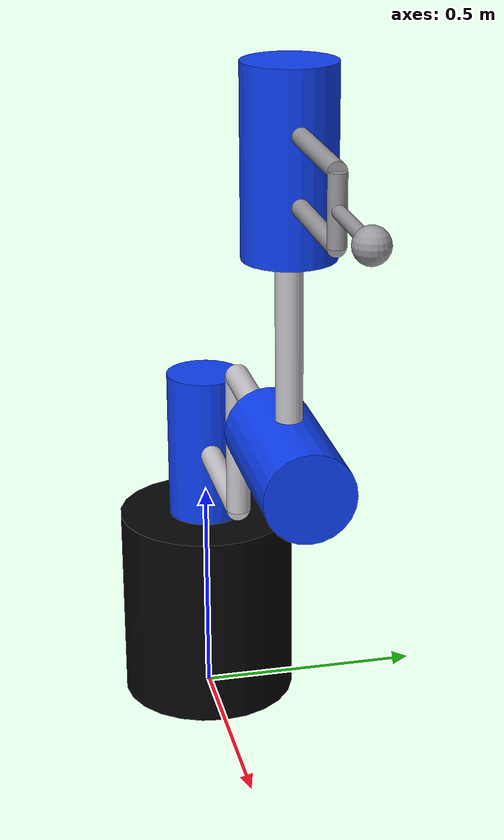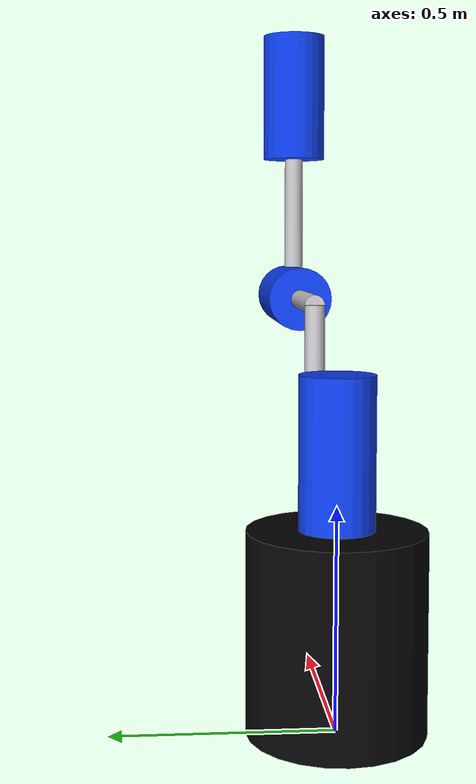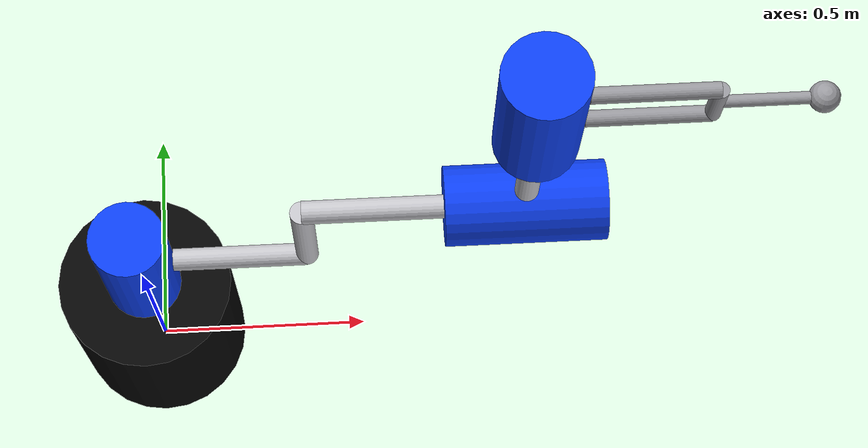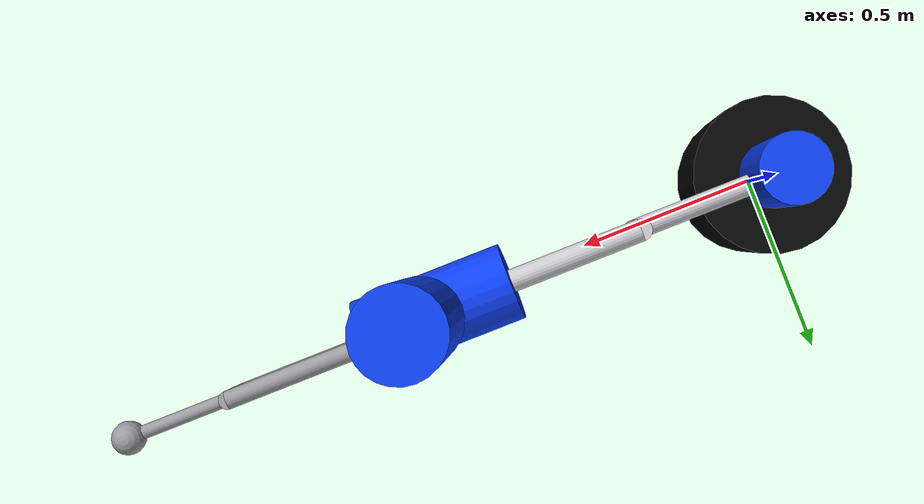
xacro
<?xml version="1.0"?>
<robot name="rrr_equal_rods_30cm_start_q2_minus90_q3_plus180_from_current">
<material name="base_black">
    <color rgba="0.02 0.02 0.02 1.0"/>
  </material>

  <material name="joint_blue">
    <color rgba="0.05 0.25 0.95 1.0"/>
  </material>

  <material name="rod_silver">
    <color rgba="0.78 0.78 0.80 1.0"/>
  </material>

  <material name="effector_silver">
    <color rgba="0.60 0.60 0.62 1.0"/>
  </material>

  <link name="world"/>
  <joint name="world_joint" type="fixed">
    <parent link="world"/>
    <child link="base_link"/>
    <origin xyz="0 0 0" rpy="0 0 0"/>
  </joint>

  <link name="base_link">
    <visual>
      <origin xyz="0 0 0.225" rpy="0 0 0"/>
      <geometry><cylinder radius="0.200" length="0.450"/></geometry>
      <material name="base_black"/>
    </visual>
    <collision>
      <origin xyz="0 0 0.225" rpy="0 0 0"/>
      <geometry><cylinder radius="0.200" length="0.450"/></geometry>
    </collision>

    <inertial>
      <origin xyz="0 0 0" rpy="0 0 0"/>
      <mass value="10.0"/>
      <inertia ixx="0.001" ixy="0" ixz="0"
               iyy="0.001" iyz="0"
               izz="0.001"/>
    </inertial>

  </link>

  <joint name="arm_1_joint" type="revolute">
    <parent link="base_link"/>
    <child link="joint_1_body"/>
    <origin xyz="0 0 0.450" rpy="0 0 0"/>
    <axis xyz="0 0 1"/>
    <limit lower="-3.14159" upper="3.14159" effort="100" velocity="1.5"/>
    <dynamics damping="0.1" friction="0.0"/>
  </joint>

  <link name="joint_1_body">
    <visual name="joint_1_body_visual">
      <origin xyz="0 0 0.170" rpy="0 0 0"/>
      <geometry>
        <cylinder radius="0.085" length="0.340"/>
      </geometry>
      <material name="joint_blue"/>
    </visual>
    <collision>
      <origin xyz="0 0 0.170" rpy="0 0 0"/>
      <geometry>
        <cylinder radius="0.085" length="0.340"/>
      </geometry>
    </collision>

    <inertial>
      <origin xyz="0 0 0" rpy="0 0 0"/>
      <mass value="1.0"/>
      <inertia ixx="0.001" ixy="0" ixz="0"
               iyy="0.001" iyz="0"
               izz="0.001"/>
    </inertial>

  </link>

  <joint name="joint_1_to_rod_1" type="fixed">
    <parent link="joint_1_body"/>
    <child link="rod_1_lower_1_to_2"/>
    <origin xyz="0.235 0 0.170" rpy="0 0 0"/>
  </joint>

  <link name="rod_1_lower_1_to_2">
    <visual name="rod_1_lower_1_to_2_visual">
      <origin xyz="0 0 0" rpy="0 1.5708 0"/>
      <geometry>
        <cylinder radius="0.025" length="0.300"/>
      </geometry>
      <material name="rod_silver"/>
    </visual>
    <collision>
      <origin xyz="0 0 0" rpy="0 1.5708 0"/>
      <geometry>
        <cylinder radius="0.025" length="0.300"/>
      </geometry>
    </collision>

    <inertial>
      <origin xyz="0 0 0" rpy="0 0 0"/>
      <mass value="0.4"/>
      <inertia ixx="0.001" ixy="0" ixz="0"
               iyy="0.001" iyz="0"
               izz="0.001"/>
    </inertial>

  </link>

  <joint name="joint_1_to_rod_2" type="fixed">
    <parent link="joint_1_body"/>
    <child link="rod_2_vertical_1_to_2"/>
    <origin xyz="0.385 0 0.320" rpy="0 0 0"/>
  </joint>

  <link name="rod_2_vertical_1_to_2">
    <visual name="rod_2_vertical_1_to_2_visual">
      <origin xyz="0 0 0" rpy="0 0 0"/>
      <geometry>
        <cylinder radius="0.025" length="0.300"/>
      </geometry>
      <material name="rod_silver"/>
    </visual>
    <collision>
      <origin xyz="0 0 0" rpy="0 0 0"/>
      <geometry>
        <cylinder radius="0.025" length="0.300"/>
      </geometry>
    </collision>

    <inertial>
      <origin xyz="0 0 0" rpy="0 0 0"/>
      <mass value="0.4"/>
      <inertia ixx="0.001" ixy="0" ixz="0"
               iyy="0.001" iyz="0"
               izz="0.001"/>
    </inertial>

  </link>

  <joint name="joint_1_to_rod_3" type="fixed">
    <parent link="joint_1_body"/>
    <child link="rod_3_upper_1_to_2"/>
    <origin xyz="0.535 0 0.470" rpy="0 0 0"/>
  </joint>

  <link name="rod_3_upper_1_to_2">
    <visual name="rod_3_upper_1_to_2_visual">
      <origin xyz="0 0 0" rpy="0 1.5708 0"/>
      <geometry>
        <cylinder radius="0.025" length="0.300"/>
      </geometry>
      <material name="rod_silver"/>
    </visual>
    <collision>
      <origin xyz="0 0 0" rpy="0 1.5708 0"/>
      <geometry>
        <cylinder radius="0.025" length="0.300"/>
      </geometry>
    </collision>

    <inertial>
      <origin xyz="0 0 0" rpy="0 0 0"/>
      <mass value="0.4"/>
      <inertia ixx="0.001" ixy="0" ixz="0"
               iyy="0.001" iyz="0"
               izz="0.001"/>
    </inertial>

  </link>

  <joint name="arm_2_joint" type="revolute">
    <parent link="joint_1_body"/>
    <child link="joint_2_body"/>
    <origin xyz="0.855 0 0.470" rpy="1.5708 0 0"/>
    <axis xyz="1 0 0"/>
    <limit lower="-1.5708" upper="1.5708" effort="100" velocity="1.5"/>
    <dynamics damping="0.1" friction="0.0"/>
  </joint>

  <link name="joint_2_body">
    <visual name="joint_2_body_visual">
      <origin xyz="0 0 0.000" rpy="0 1.5708 0"/>
      <geometry>
        <cylinder radius="0.085" length="0.340"/>
      </geometry>
      <material name="joint_blue"/>
    </visual>
    <collision>
      <origin xyz="0 0 0.000" rpy="0 1.5708 0"/>
      <geometry>
        <cylinder radius="0.085" length="0.340"/>
      </geometry>
    </collision>

    <inertial>
      <origin xyz="0 0 0" rpy="0 0 0"/>
      <mass value="1.0"/>
      <inertia ixx="0.001" ixy="0" ixz="0"
               iyy="0.001" iyz="0"
               izz="0.001"/>
    </inertial>

  </link>

  <joint name="joint_2_to_rod_4" type="fixed">
    <parent link="joint_2_body"/>
    <child link="rod_4_2_to_3"/>
    <origin xyz="0 0.235 0" rpy="0 0 0"/>
  </joint>

  <link name="rod_4_2_to_3">
    <visual name="rod_4_2_to_3_visual">
      <origin xyz="0 0 0" rpy="1.5708 0 0"/>
      <geometry>
        <cylinder radius="0.025" length="0.300"/>
      </geometry>
      <material name="rod_silver"/>
    </visual>
    <collision>
      <origin xyz="0 0 0" rpy="1.5708 0 0"/>
      <geometry>
        <cylinder radius="0.025" length="0.300"/>
      </geometry>
    </collision>

    <inertial>
      <origin xyz="0 0 0" rpy="0 0 0"/>
      <mass value="0.4"/>
      <inertia ixx="0.001" ixy="0" ixz="0"
               iyy="0.001" iyz="0"
               izz="0.001"/>
    </inertial>

  </link>

  <joint name="arm_3_joint" type="revolute">
    <parent link="joint_2_body"/>
    <child link="joint_3_body"/>
    <origin xyz="0 0.555 0" rpy="0 0 0"/>
    <axis xyz="0 1 0"/>
    <limit lower="-1.5708" upper="1.5708" effort="100" velocity="1.5"/>
    <dynamics damping="0.1" friction="0.0"/>
  </joint>

  <link name="joint_3_body">
    <visual name="joint_3_body_visual">
      <origin xyz="0 0 0.000" rpy="1.5708 0 0"/>
      <geometry>
        <cylinder radius="0.085" length="0.340"/>
      </geometry>
      <material name="joint_blue"/>
    </visual>
    <collision>
      <origin xyz="0 0 0.000" rpy="1.5708 0 0"/>
      <geometry>
        <cylinder radius="0.085" length="0.340"/>
      </geometry>
    </collision>

    <inertial>
      <origin xyz="0 0 0" rpy="0 0 0"/>
      <mass value="1.0"/>
      <inertia ixx="0.001" ixy="0" ixz="0"
               iyy="0.001" iyz="0"
               izz="0.001"/>
    </inertial>

  </link>

  <joint name="joint_3_to_end_effector" type="fixed">
    <parent link="joint_3_body"/>
    <child link="end_effector"/>
    <origin xyz="0.085 0 0" rpy="1.5708 0 0"/>
  </joint>

  <link name="end_effector">
    <visual name="effector_upper_bar">
      <origin xyz="0.12 0 0.06" rpy="0 1.5708 0"/>
      <geometry><cylinder radius="0.016" length="0.24"/></geometry>
      <material name="effector_silver"/>
    </visual>
    <visual name="effector_lower_bar">
      <origin xyz="0.12 0 -0.06" rpy="0 1.5708 0"/>
      <geometry><cylinder radius="0.016" length="0.24"/></geometry>
      <material name="effector_silver"/>
    </visual>
    <visual name="effector_crossbar">
      <origin xyz="0.24 0 0" rpy="0 0 0"/>
      <geometry><cylinder radius="0.016" length="0.12"/></geometry>
      <material name="effector_silver"/>
    </visual>
    <visual name="effector_ball_stem">
      <origin xyz="0.33 0 0" rpy="0 1.5708 0"/>
      <geometry><cylinder radius="0.012" length="0.18"/></geometry>
      <material name="effector_silver"/>
    </visual>
    <visual name="effector_ball">
      <origin xyz="0.44 0 0" rpy="0 0 0"/>
      <geometry><sphere radius="0.03"/></geometry>
      <material name="effector_silver"/>
    </visual>

    <inertial>
      <origin xyz="0 0 0" rpy="0 0 0"/>
      <mass value="0.3"/>
      <inertia ixx="0.001" ixy="0" ixz="0"
               iyy="0.001" iyz="0"
               izz="0.001"/>
    </inertial>

  </link>

</robot>
